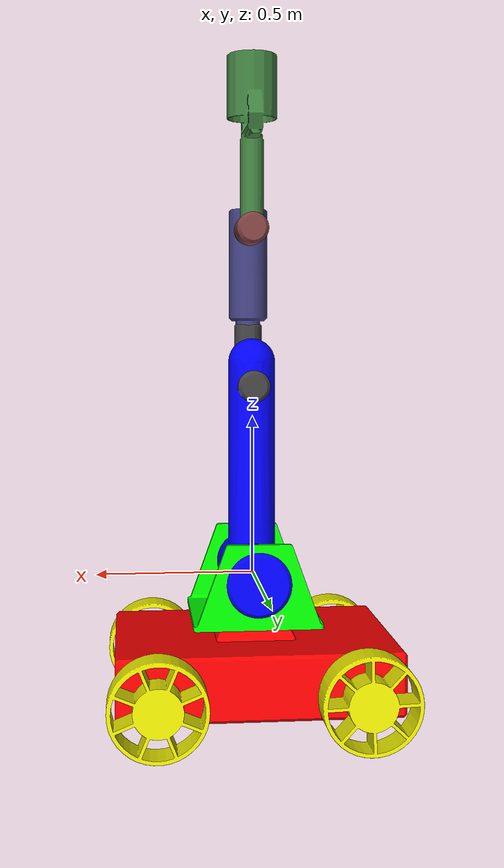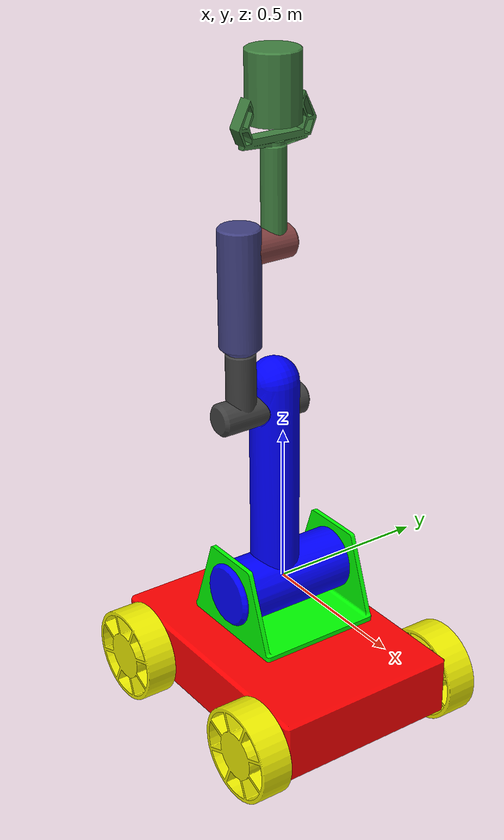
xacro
<robot name="robot_model" xmlns:xacro="http://www.ros.org/wiki/xacro">

  <xacro:property name="gaussian_noise_mean" value="$(arg gaussian_noise_mean)" />

<!-- ROBOT LINKS AND JOINT INFORMATION (MASS, INERTIAS, RELATIONSHIP, ETC.) -->
  <link name="dummy">
  </link>
  <joint name="dummy_joint" type="fixed">
    <parent link="dummy"/>
    <child link="base_link"/>
  </joint>
  <link name="base_link">
    <inertial>
      <origin xyz="0 0 0" rpy="0 0 0" />
      <mass value="13.189" />
      <inertia ixx="0.44216" ixy="-3.7455E-11" ixz="3.9704E-09" iyy="0.87232" iyz="-2.1794E-05" izz="1.2206" />
    </inertial>
    <visual>
      <origin xyz="0 0 0" rpy="0 0 0" />
      <geometry>
        <mesh filename="package://robot_model/meshes/base_link.STL" />
      </geometry>
      <material name="">
        <color rgba="1 0 0 1" />
      </material>
    </visual>
    <collision>
      <origin xyz="0 0 0" rpy="0 0 0" />
      <geometry>
        <mesh filename="package://robot_model/meshes/base_link.STL" />
      </geometry>
    </collision>
  </link>
  <link name="Link1">
    <inertial>
      <origin xyz="0 0 0" rpy="0 0 0" />
      <mass value="3.2337" />
      <inertia ixx="0.071364" ixy="-9.0285E-09" ixz="3.4807E-10" iyy="0.049192" iyz="1.6935E-08" izz="0.089213" />
    </inertial>
    <visual>
      <origin xyz="0 0 0" rpy="0 0 0" />
      <geometry>
        <mesh filename="package://robot_model/meshes/Link1.STL" />
      </geometry>
      <material name="">
        <color rgba="0 1 0 1" />
      </material>
    </visual>
    <collision>
      <origin xyz="0 0 0" rpy="0 0 0" />
      <geometry>
        <mesh filename="package://robot_model/meshes/Link1.STL" />
      </geometry>
    </collision>
  </link>
  <joint name="Joint1" type="revolute">
    <origin xyz="0 0 0" rpy="0 0 0" />
    <parent link="base_link" />
    <child link="Link1" />
    <axis xyz="0 0 -1" />
    <limit lower="-3.1416" upper="3.1416" effort="100" velocity="50" />
  </joint>
  <link name="Link2">
    <inertial>
      <origin xyz="0 0 0" rpy="0 0 0" />
      <mass value="4.7034" />
      <inertia ixx="0.054672" ixy="1.3667E-07" ixz="-0.014278" iyy="0.29069" iyz="5.385E-08" izz="0.25542" />
    </inertial>
    <visual>
      <origin xyz="0 0 0" rpy="0 0 0" />
      <geometry>
        <mesh filename="package://robot_model/meshes/Link2.STL" />
      </geometry>
      <material name="">
        <color rgba="0 0 1 1" />
      </material>
    </visual>
    <collision>
      <origin xyz="0 0 0" rpy="0 0 0" />
      <geometry>
        <mesh filename="package://robot_model/meshes/Link2.STL" />
      </geometry>
    </collision>
  </link>
  <joint name="Joint2" type="revolute">
    <origin xyz="0 -0.032 0" rpy="1.5708 -1.5708 0" />
    <parent link="Link1" />
    <child link="Link2" />
    <axis xyz="0 0 1" />
    <limit lower="-3.14159" upper="3.14159" effort="100" velocity="50" />
  </joint>
  <link name="Link3">
    <inertial>
      <origin xyz="0 0 0" rpy="0 0 0" />
      <mass value="1.398" />
      <inertia ixx="0.010442" ixy="1.0595E-08" ixz="-0.0012119" iyy="0.012215" iyz="-5.6993E-09" izz="0.0035247" />
    </inertial>
    <visual>
      <origin xyz="0 0 0" rpy="0 0 0" />
      <geometry>
        <mesh filename="package://robot_model/meshes/Link3.STL" />
      </geometry>
      <material name="">
        <color rgba="0.25 0.25 0.25 1" />
      </material>
    </visual>
    <collision>
      <origin xyz="0 0 0" rpy="0 0 0" />
      <geometry>
        <mesh filename="package://robot_model/meshes/Link3.STL" />
      </geometry>
    </collision>
  </link>
  <joint name="Joint3" type="revolute">
    <origin xyz="0.6 0 0" rpy="0 0 0" />
    <parent link="Link2" />
    <child link="Link3" />
    <axis xyz="0 0 1" />
    <limit lower="-3.14159" upper="3.14159" effort="100" velocity="50" />
  </joint>
  <link name="Link4">
    <inertial>
      <origin xyz="0 0 0" rpy="0 0 0" />
      <mass value="1.8144" />
      <inertia ixx="0.028059" ixy="4.6E-09" ixz="-1.5764E-09" iyy="0.028173" iyz="-0.0007752" izz="0.0033203" />
    </inertial>
    <visual>
      <origin xyz="0 0 0" rpy="0 0 0" />
      <geometry>
        <mesh filename="package://robot_model/meshes/Link4.STL" />
      </geometry>
      <material name="">
        <color rgba="0.25 0.25 0.5 1" />
      </material>
    </visual>
    <collision>
      <origin xyz="0 0 0" rpy="0 0 0" />
      <geometry>
        <mesh filename="package://robot_model/meshes/Link4.STL" />
      </geometry>
    </collision>
  </link>
  <joint name="Joint4" type="revolute">
    <origin xyz="0 0 0.1175" rpy="1.5708 0 1.5708" />
    <parent link="Link3" />
    <child link="Link4" />
    <axis xyz="0 0 1" />
    <limit lower="-3.14159" upper="3.14159" effort="100" velocity="50" />
  </joint>
  <link name="Link5">
    <inertial>
      <origin xyz="0 0 0" rpy="0 0 0" />
      <mass value="1.1558" />
      <inertia ixx="0.003775" ixy="-1.1827E-09" ixz="-1.2426E-09" iyy="0.0038772" iyz="0.00017257" izz="0.0014527" />
    </inertial>
    <visual>
      <origin xyz="0 0 0" rpy="0 0 0" />
      <geometry>
        <mesh filename="package://robot_model/meshes/Link5.STL" />
      </geometry>
      <material name="">
        <color rgba="0.5 0.25 0.25 1" />
      </material>
    </visual>
    <collision>
      <origin xyz="0 0 0" rpy="0 0 0" />
      <geometry>
        <mesh filename="package://robot_model/meshes/Link5.STL" />
      </geometry>
    </collision>
  </link>
  <joint name="Joint5" type="revolute">
    <origin xyz="0 0 0.5" rpy="-1.5708 0 0" />
    <parent link="Link4" />
    <child link="Link5" />
    <axis xyz="0 0 -1" />
    <limit lower="-3.14159" upper="3.14159" effort="100" velocity="50" />
  </joint>
  <link name="Link6">
    <inertial>
      <origin xyz="0 0 0" rpy="0 0 0" />
      <mass value="1.4646" />
      <inertia ixx="0.0092037" ixy="-3.4431E-20" ixz="1.5284E-19" iyy="0.0093141" iyz="-1.1154E-19" izz="0.0010717" />
    </inertial>
    <visual>
      <origin xyz="0 0 0" rpy="0 0 0" />
      <geometry>
        <mesh filename="package://robot_model/meshes/Link6_glass.STL" />
      </geometry>
      <material name="">
        <color rgba="0.25 0.5 0.25 1" />
      </material>
    </visual>
    <collision>
      <origin xyz="0 0 0" rpy="0 0 0" />
      <geometry>
        <mesh filename="package://robot_model/meshes/Link6_glass.STL" />
      </geometry>
    </collision>
  </link>
  <joint name="Joint6" type="revolute">
    <origin xyz="0 -0.3857 -0.1175" rpy="1.5708 0 0" />
    <parent link="Link5" />
    <child link="Link6" />
    <axis xyz="0 0 1" />
    <limit lower="-3.14159" upper="3.14159" effort="100" velocity="50" />
  </joint>

  <link name="link_leftFrontWheel">
        <inertial>
            <origin xyz="-5.5511E-17 2.2204E-16 0.002106" rpy="0 0 0" />
            <mass value="1.0489" />
            <inertia ixx="0.006146" ixy="2.1218E-17" ixz="1.1965E-18" iyy="0.006146" iyz="2.407E-19" izz="0.010259" />
        </inertial>
        <visual>
            <origin xyz="0 0 0" rpy="0 0 0" />
            <geometry>
                <mesh filename="package://robot_model/meshes/link_leftFrontWheel.STL" />
            </geometry>
            <material name="">
                <color rgba="0.93 0.93 0 1" />
            </material>
        </visual>
        <collision>
            <origin xyz="0 0 0" rpy="0 0 0" />
            <geometry>
                <mesh filename="package://robot_model/meshes/link_leftFrontWheel.STL" />
            </geometry>
        </collision>
    </link>
    <joint name="joint_leftFrontWheel" type="continuous">
        <origin xyz="0.315 0.3525 -0.32235" rpy="1.5708 0 0" />
        <parent link="base_link" />
        <child link="link_leftFrontWheel" />
        <axis xyz="0 0 -1" />
    </joint>
    <link name="link__rightFrontWheel">
        <inertial>
            <origin xyz="0 -2.2204E-16 -0.002106" rpy="0 0 0" />
            <mass value="1.0489" />
            <inertia ixx="0.006146" ixy="-2.0382E-17" ixz="-7.0505E-19" iyy="0.006146" iyz="1.0064E-18" izz="0.010259" />
        </inertial>
        <visual>
            <origin xyz="0 0 0" rpy="0 0 0" />
            <geometry>
                <mesh filename="package://robot_model/meshes/link__rightFrontWheel.STL" />
            </geometry>
            <material name="">
                <color rgba="0.93 0.93 0 1" />
            </material>
        </visual>
        <collision>
            <origin xyz="0 0 0" rpy="0 0 0" />
            <geometry>
                <mesh filename="package://robot_model/meshes/link__rightFrontWheel.STL" />
            </geometry>
        </collision>
    </link>
    <joint name="joint__rightFrontWheel" type="continuous">
        <origin xyz="0.315 -0.3525 -0.32235" rpy="1.5708 0 0" />
        <parent link="base_link" />
        <child link="link__rightFrontWheel" />
        <axis xyz="0 0 -1" />
    </joint>
    <link name="link__rightRearWheel">
        <inertial>
            <origin xyz="-2.2204E-16 -1.1102E-16 0.002106" rpy="0 0 0" />
            <mass value="1.0489" />
            <inertia ixx="0.006146" ixy="-8.1049E-18" ixz="-3.7604E-19" iyy="0.006146" iyz="-5.8935E-19" izz="0.010259" />
        </inertial>
        <visual>
            <origin xyz="0 0 0" rpy="0 0 0" />
            <geometry>
                <mesh filename="package://robot_model/meshes/link__rightRearWheel.STL" />
            </geometry>
            <material name="">
                <color rgba="0.93 0.93 0 1" />
            </material>
        </visual>
        <collision>
            <origin xyz="0 0 0" rpy="0 0 0" />
            <geometry>
                <mesh filename="package://robot_model/meshes/link__rightRearWheel.STL" />
            </geometry>
        </collision>
    </link>
    <joint name="joint__rightRearWheel" type="continuous">
        <origin xyz="-0.315 -0.3525 -0.32235" rpy="1.5708 0 0" />
        <parent link="base_link" />
        <child link="link__rightRearWheel" />
        <axis xyz="0 0 -1" />
        <limit lower="0" upper="0" effort="100" velocity="100" />
    </joint>
    <link name="link__leftRearWheel">
        <inertial>
            <origin xyz="0 -1.9429E-16 -0.002106" rpy="0 0 0" />
            <mass value="1.0489" />
            <inertia ixx="0.006146" ixy="-2.0871E-17" ixz="-4.7748E-19" iyy="0.006146" iyz="8.2626E-19" izz="0.010259" />
        </inertial>
        <visual>
            <origin xyz="0 0 0" rpy="0 0 0" />
            <geometry>
                <mesh filename="package://robot_model/meshes/link__leftRearWheel.STL" />
            </geometry>
            <material name="">
                <color rgba="0.93 0.93 0 1" />
            </material>
        </visual>
        <collision>
            <origin xyz="0 0 0" rpy="0 0 0" />
            <geometry>
                <mesh filename="package://robot_model/meshes/link__leftRearWheel.STL" />
            </geometry>
        </collision>
    </link>
    <joint name="joint__leftRearWheel" type="continuous">
        <origin xyz="-0.315 0.3525 -0.32235" rpy="1.5708 0 0" />
        <parent link="base_link" />
        <child link="link__leftRearWheel" />
        <axis xyz="0 0 -1" />
        <limit lower="0" upper="0" effort="100" velocity="100" />
    </joint>

 <!-- GAZEBO PARAMETERS FOR EACH LINK (COLLISION, WHEEL FRICTION) -->
  <gazebo reference="base_link">
    <material>Gazebo/Red</material>
    <self_collide>1</self_collide>
  </gazebo>

  <gazebo reference="link__leftRearWheel">
    <material>Gazebo/Yellow</material>
    <self_collide>1</self_collide>
    <mu1>0.2</mu1>
    <mu2>1.0</mu2>
  </gazebo>

  <gazebo reference="link__rightRearWheel">
    <material>Gazebo/Yellow</material>
    <self_collide>1</self_collide>
    <mu1>0.2</mu1>
    <mu2>1.0</mu2>
  </gazebo>

  <gazebo reference="link_leftFrontWheel">
    <material>Gazebo/Yellow</material>
    <self_collide>1</self_collide>
    <mu1>0.2</mu1>
    <mu2>1.0</mu2>
  </gazebo>

  <gazebo reference="link__rightFrontWheel">
    <material>Gazebo/Yellow</material>
    <self_collide>1</self_collide>
    <mu1>0.2</mu1>
    <mu2>1.0</mu2>
  </gazebo>

  <gazebo reference="Link1">
    <material>Gazebo/Green</material>
    <self_collide>1</self_collide>
  </gazebo>

  <gazebo reference="Link2">
    <material>Gazebo/Blue</material>
    <self_collide>1</self_collide>
  </gazebo>

  <gazebo reference="Link3">
    <material>Gazebo/SkyBlue</material>
    <self_collide>1</self_collide>
  </gazebo>

  <gazebo reference="Link4">
    <material>Gazebo/Purple</material>
    <self_collide>1</self_collide>
  </gazebo>

  <gazebo reference="Link5">
    <material>Gazebo/Orange</material>
    <self_collide>1</self_collide>
  </gazebo>

  <gazebo reference="Link6">
    <material>Gazebo/RedBright</material>
    <self_collide>1</self_collide>
  </gazebo>

  <!-- MOBILE ROBOT CONTROLLER (SKID STEER DRIVE PLUGIN - GAZEBO= -->
  <gazebo>
      <plugin name="skid_steer_drive_controller" filename="libgazebo_ros_skid_steer_drive.so">
          <always_on>1</always_on>
          <updateRate>100.0</updateRate>
          <robotNamespace>/</robotNamespace>
          <leftFrontJoint>joint_leftFrontWheel</leftFrontJoint>
          <rightFrontJoint>joint__rightFrontWheel</rightFrontJoint>
          <leftRearJoint>joint__leftRearWheel</leftRearJoint>
          <rightRearJoint>joint__rightRearWheel</rightRearJoint>
          <wheelSeparation>0.705</wheelSeparation>
          <wheelDiameter>0.100</wheelDiameter>
          <torque>1000</torque>
          <commandTopic>cmd_vel</commandTopic>
          <odometryTopic>odom</odometryTopic>
          <odometryFrame>odom</odometryFrame>
          <robotBaseFrame>dummy</robotBaseFrame>
          <publishWheelTF>true</publishWheelTF>
          <publishOdomTF>true</publishOdomTF>
          <publishWheelJointState>true</publishWheelJointState>
          <covariance_x>0.0001</covariance_x>
          <covariance_y>0.0001</covariance_y>
          <covariance_yaw>0.01</covariance_yaw>
          <broadcastTF>true</broadcastTF>
      </plugin>
  </gazebo>

  <!-- VIRTUAL IMU IN BASE_LINK (GAZEBO PLUGIN) -->
  <gazebo reference="base_link">
    <sensor type="imu" name="sensor_imu">
        <always_on>1</always_on>
        <update_rate>10</update_rate>
        <visualize>true</visualize>
        <plugin name="imu_plugin" filename="libgazebo_ros_imu_sensor.so">
          <topicName>/imu/data</topicName>
          <frameName>imu_frame</frameName>
          <updateRateHZ>100.0</updateRateHZ>
          <gaussianNoise>0.0</gaussianNoise>
          <xyzOffset>0 0 0</xyzOffset>
          <rpyOffset>0 0 0</rpyOffset>
      </plugin>
    </sensor>
 </gazebo>

 <!-- TRANSMISSION DEFINITION FOR EACH JOINT -->
 <transmission name="link_1_trans">
	<type>transmission_interface/SimpleTransmission</type>
	<joint name="Joint1">
		<hardwareInterface>hardware_interface/PositionJointInterface</hardwareInterface>
	</joint>
	<actuator name="link_1_motor">
		<hardwareInterface>hardware_interface/PositionJointInterface</hardwareInterface>
		<mechanicalReduction>1</mechanicalReduction>
	</actuator>
  </transmission>
  <transmission name="link_2_trans">
	<type>transmission_interface/SimpleTransmission</type>
	<joint name="Joint2">
		<hardwareInterface>hardware_interface/PositionJointInterface</hardwareInterface>
	</joint>
	<actuator name="link_2_motor">
		<hardwareInterface>hardware_interface/PositionJointInterface</hardwareInterface>
		<mechanicalReduction>1</mechanicalReduction>
	</actuator>
  </transmission>

  <transmission name="link_3_trans">
	<type>transmission_interface/SimpleTransmission</type>
	<joint name="Joint3">
		<hardwareInterface>hardware_interface/PositionJointInterface</hardwareInterface>
	</joint>
	<actuator name="link_3_motor">
		<hardwareInterface>hardware_interface/PositionJointInterface</hardwareInterface>
		<mechanicalReduction>1</mechanicalReduction>
	</actuator>
  </transmission>

  <transmission name="link_4_trans">
	<type>transmission_interface/SimpleTransmission</type>
	<joint name="Joint4">
		<hardwareInterface>hardware_interface/PositionJointInterface</hardwareInterface>
	</joint>
	<actuator name="link_4_motor">
		<hardwareInterface>hardware_interface/PositionJointInterface</hardwareInterface>
		<mechanicalReduction>1</mechanicalReduction>
	</actuator>
  </transmission>

  <transmission name="link_5_trans">
	<type>transmission_interface/SimpleTransmission</type>
	<joint name="Joint5">
		<hardwareInterface>hardware_interface/PositionJointInterface</hardwareInterface>
	</joint>
	<actuator name="link_5_motor">
		<hardwareInterface>hardware_interface/PositionJointInterface</hardwareInterface>
		<mechanicalReduction>1</mechanicalReduction>
	</actuator>
  </transmission>

  <transmission name="link_6_trans">
	<type>transmission_interface/SimpleTransmission</type>
	<joint name="Joint6">
		<hardwareInterface>hardware_interface/PositionJointInterface</hardwareInterface>
	</joint>
	<actuator name="link_6_motor">
		<hardwareInterface>hardware_interface/PositionJointInterface</hardwareInterface>
		<mechanicalReduction>1</mechanicalReduction>
	</actuator>
  </transmission>

  <!-- ARM ROBOT CONTROLLER (GAZEBO PLUGIN) -->
  <gazebo>
	<plugin name="gazebo_ros_control" filename="libgazebo_ros_control.so">
		<robotNamespace>/</robotNamespace>
	</plugin>
  </gazebo>

  <!-- VIRTUAL IMU IN GLASS (GAZEBO PLUGIN) -->
  <gazebo reference="Link6">
    <sensor type="imu" name="sensor_imu2">
        <always_on>1</always_on>
        <update_rate>50</update_rate>
        <visualize>true</visualize>
        <plugin name="imu2_plugin" filename="libgazebo_ros_imu_sensor.so">
          <topicName>/imu2/data</topicName>
          <frameName>imu_frame2</frameName>
          <updateRateHZ>100.0</updateRateHZ>
          <gaussianNoise>0.0</gaussianNoise>
          <xyzOffset>0 0 0</xyzOffset>
          <rpyOffset>-3.14 0 0</rpyOffset>
          <broadcastTF>true</broadcastTF>
      </plugin>
    </sensor>
 </gazebo>

</robot>
